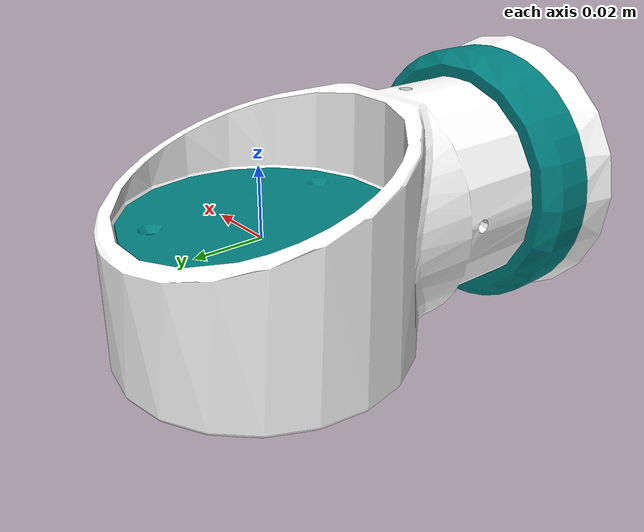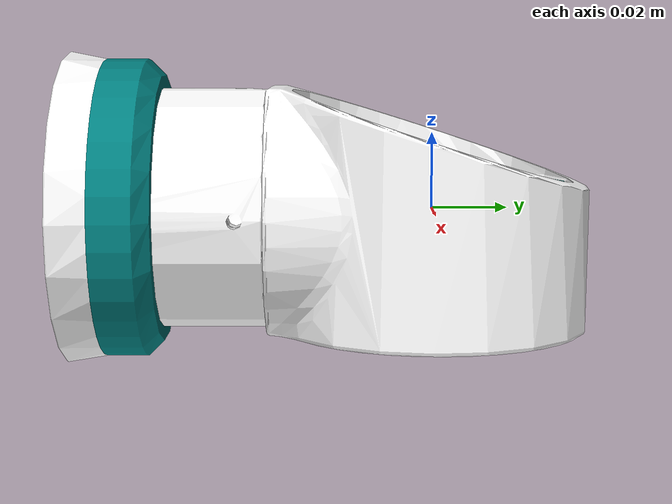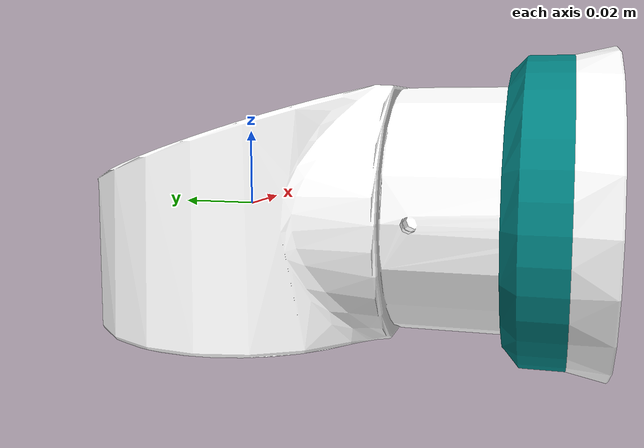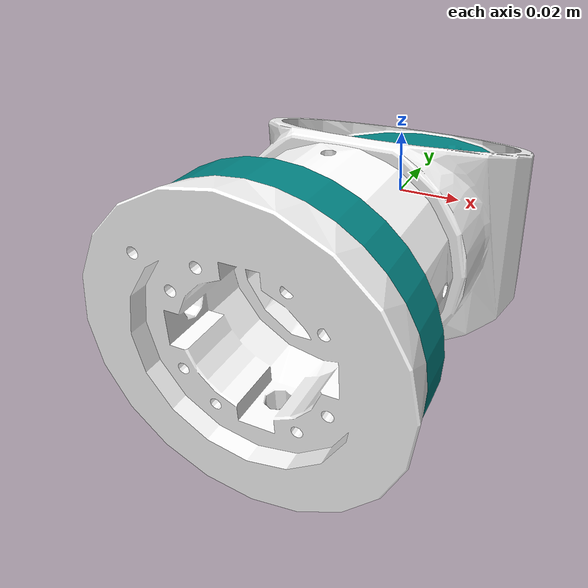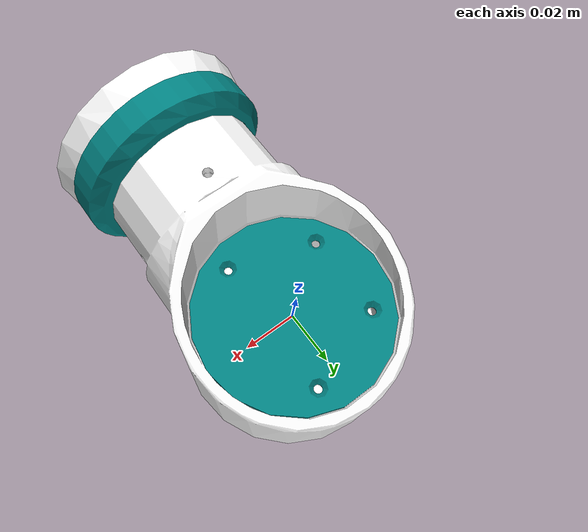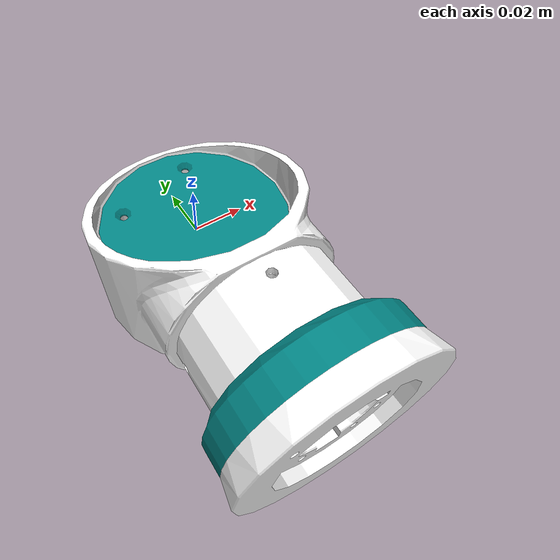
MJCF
<mujoco model="l4">
  <default>
    <default class="visual">
      <geom group="2" type="mesh" contype="0" conaffinity="0"/>
    </default>
    <default class="collision">
      <geom group="3" type="mesh"/>
    </default>
  </default>
  <asset>
    <material name="MTL0.013" specular="0.0" shininess="0.25" rgba="1.000000 1.000000 1.000000 1.000000"/>
    <material name="MTL1.005" specular="0.0" shininess="0.25" rgba="0.000000 0.502000 0.502000 1.000000"/>
    <mesh file="l4_0.obj"/>
    <mesh file="l4_1.obj"/>
  </asset>
  <worldbody>
    <body name="l4">
      <geom mesh="l4_0" material="MTL1.005" class="visual"/>
      <geom mesh="l4_1" material="MTL0.013" class="visual"/>
      <geom mesh="l4_0" class="collision"/>
      <geom mesh="l4_1" class="collision"/>
    </body>
  </worldbody>
</mujoco>
